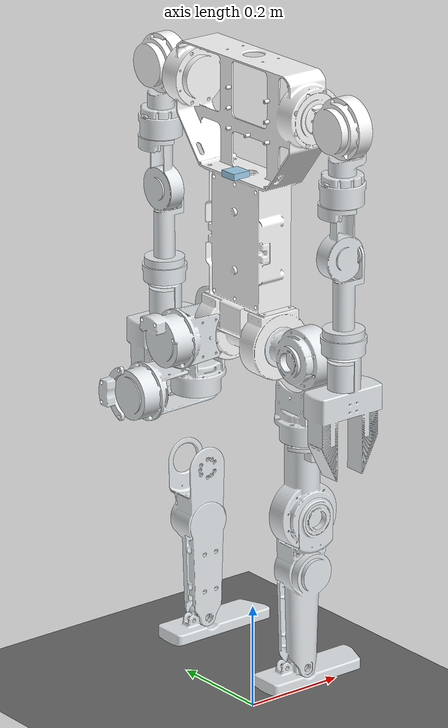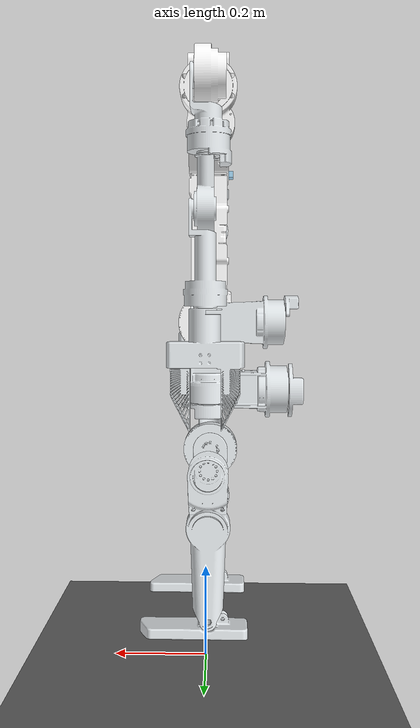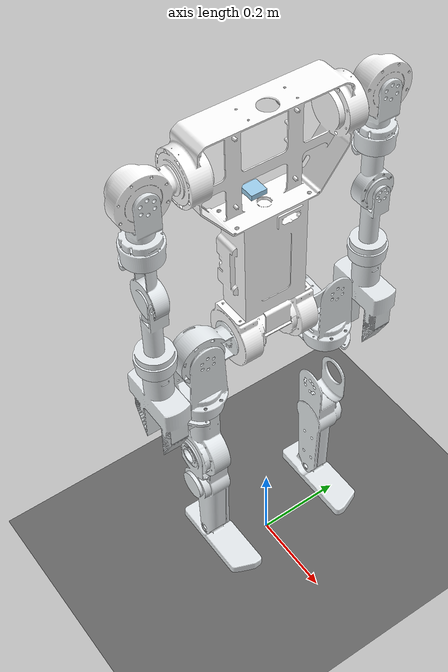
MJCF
<mujoco model="k-bot_naked">
  <option iterations="50" timestep="0.001" solver="PGS" gravity="0 0 -9.81" />

  <compiler angle="radian" meshdir="meshes" eulerseq="zyx" autolimits="true" />

  <default>
    <joint limited="true" damping="0.01" armature="0.01" frictionloss="0.01" />
    <geom condim="4" contype="1" conaffinity="15" friction="0.9 0.2 0.2" solref="0.001 2" />
    <motor ctrllimited="true" />
    <equality solref="0.001 2" />
    <default class="visualgeom">
      <geom material="visualgeom" condim="1" contype="0" conaffinity="0" />
    </default>
  </default>

  <asset>
    <mesh name="body1-part" file="body1-part.stl" />
    <mesh name="imu" file="imu.stl" />
    <mesh name="leg0_shell" file="leg0_shell.stl" />
    <mesh name="leg0_shell_2" file="leg0_shell_2.stl" />
    <mesh name="shoulder" file="shoulder.stl" />
    <mesh name="shoulder_2" file="shoulder_2.stl" />
    <mesh name="leg1_shell" file="leg1_shell.stl" />
    <mesh name="leg1_shell3" file="leg1_shell3.stl" />
    <mesh name="arm1_top" file="arm1_top.stl" />
    <mesh name="arm1_top_2" file="arm1_top_2.stl" />
    <mesh name="leg2_shell" file="leg2_shell.stl" />
    <mesh name="leg2_shell_2" file="leg2_shell_2.stl" />
    <mesh name="arm2_shell" file="arm2_shell.stl" />
    <mesh name="arm2_shell_2" file="arm2_shell_2.stl" />
    <mesh name="leg3_shell2" file="leg3_shell2.stl" />
    <mesh name="leg3_shell22" file="leg3_shell22.stl" />
    <mesh name="arm3_shell" file="arm3_shell.stl" />
    <mesh name="arm3_shell2" file="arm3_shell2.stl" />
    <mesh name="foot3" file="foot3.stl" />
    <mesh name="hand_shell" file="hand_shell.stl" />
    <mesh name="hand_shell_2" file="hand_shell_2.stl" />
    <mesh name="foot1" file="foot1.stl" />
    <texture name="texplane" type="2d" builtin="checker" rgb1=".0 .0 .0" rgb2=".8 .8 .8" width="100" height="100" />
    <material name="matplane" reflectance="0." texture="texplane" texrepeat="1 1" texuniform="true" />
    <material name="visualgeom" rgba="0.5 0.9 0.2 1" />
  </asset>

  <worldbody>
    <light directional="true" diffuse="0.4 0.4 0.4" specular="0.1 0.1 0.1" pos="0 0 5.0" dir="0 0 -1" castshadow="false" />
    <light directional="true" diffuse="0.6 0.6 0.6" specular="0.2 0.2 0.2" pos="0 0 4" dir="0 0 -1" />
    <geom name="ground" type="plane" pos="0 0 0" size="100 100 0.001" quat="1 0 0 0" material="matplane" condim="3" conaffinity="15" />
    <camera name="fixed" pos="0 -3.0 1.4006170219400256" xyaxes="1 0 0 0 0 1" />
    <camera name="track" mode="trackcom" pos="0 -3.0 1.4006170219400256" xyaxes="1 0 0 0 0 1" />
    <body name="root" pos="0 0 0.9006170219400256" quat="1 0 0 0">
      <freejoint name="root" />
      <site name="imu" size="0.01" pos="0 0 0" />
      <geom name="body1-part_collision" pos="0 0.001 -7.96327e-07" quat="0.707388 0.706825 0 0" type="mesh" rgba="1 1 1 1" mesh="body1-part" contype="1" conaffinity="0" density="0" group="1" class="visualgeom" />
      <geom type="mesh" rgba="1 1 1 1" mesh="body1-part" pos="0 0.001 -7.96327e-07" quat="0.707388 0.706825 0 0" />
      <geom name="imu_collision" pos="-0.0471263 0.000718484 0.140888" quat="9.23858e-12 2.32051e-08 0.0003982 1" type="mesh" rgba="0.615686 0.811765 0.929412 1" mesh="imu" contype="1" conaffinity="0" density="0" group="1" class="visualgeom" />
      <geom type="mesh" rgba="0.615686 0.811765 0.929412 1" mesh="imu" pos="-0.0471263 0.000718484 0.140888" quat="9.23858e-12 2.32051e-08 0.0003982 1" />
      <body name="leg0_shell" pos="-0.00712626 0.0891763 -0.163282" quat="0.707388 0.706825 0 0">
        <inertial pos="-0.00374632 -5.30704e-10 -0.0681251" quat="0.999982 0 -0.00597565 0" mass="1.32345" diaginertia="0.0018859 0.00142483 0.00129962" />
        <joint name="left_hip_pitch_04" pos="0 0 0" axis="0 0 1" range="-1.5708 1.5708" actuatorfrcrange="-120 120" />
        <geom name="leg0_shell_collision" type="mesh" rgba="0.898039 0.917647 0.929412 1" mesh="leg0_shell" contype="1" conaffinity="0" density="0" group="1" class="visualgeom" />
        <geom type="mesh" rgba="0.898039 0.917647 0.929412 1" mesh="leg0_shell" />
        <body name="leg1_shell" pos="0.0275 -1.54339e-09 -0.0695" quat="0.5 -0.5 -0.5 0.5">
          <inertial pos="-0.116471 0.00323117 0.025411" quat="0.162954 0.777613 0.0974626 0.599387" mass="1.36077" diaginertia="0.00293018 0.00283394 0.00156523" />
          <joint name="left_hip_roll_03" pos="0 0 0" axis="0 0 1" range="-3.18523 0.349066" actuatorfrcrange="-60 60" />
          <geom name="leg1_shell_collision" type="mesh" rgba="0.898039 0.917647 0.929412 1" mesh="leg1_shell" contype="1" conaffinity="0" density="0" group="1" class="visualgeom" />
          <geom type="mesh" rgba="0.898039 0.917647 0.929412 1" mesh="leg1_shell" />
          <body name="leg2_shell" pos="-0.1575 0.000119814 0.0275" quat="0.707107 0 0.707107 0">
            <inertial pos="4.08555e-07 0.000531684 -0.137308" quat="0.707084 -0.00547271 0.00548785 0.707088" mass="1.82092" diaginertia="0.00422586 0.00311812 0.00206385" />
            <joint name="left_hip_yaw_03" pos="0 0 0" axis="0 0 1" range="-1.5708 1.5708" actuatorfrcrange="-60 60" />
            <geom name="leg2_shell_collision" type="mesh" rgba="0.898039 0.917647 0.929412 1" mesh="leg2_shell" contype="1" conaffinity="0" density="0" group="1" class="visualgeom" />
            <geom type="mesh" rgba="0.898039 0.917647 0.929412 1" mesh="leg2_shell" />
            <body name="leg3_shell2" pos="0 0.0352 -0.1425" quat="0.707107 0.707107 0 0">
              <inertial pos="0.00103299 -0.12548 0.0366711" quat="0.691727 0.665165 0.198925 -0.19874" mass="1.17968" diaginertia="0.00753953 0.00750258 0.00111461" />
              <joint name="left_knee_04" pos="0 0 0" axis="0 0 1" range="-2.0944 0" actuatorfrcrange="-120 120" />
              <geom name="leg3_shell2_collision" type="mesh" rgba="0.898039 0.917647 0.929412 1" mesh="leg3_shell2" contype="1" conaffinity="0" density="0" group="1" class="visualgeom" />
              <geom type="mesh" rgba="0.898039 0.917647 0.929412 1" mesh="leg3_shell2" />
              <body name="foot1" pos="0 -0.3 0.0692" quat="1 4.64102e-08 0 0">
                <inertial pos="0.0213499 -0.019419 -0.0192762" quat="0.505229 0.504986 0.485131 0.504362" mass="0.582091" diaginertia="0.00218912 0.00202432 0.000282398" />
                <joint name="left_ankle_02" pos="0 0 0" axis="0 0 1" range="-0.698132 0.698132" actuatorfrcrange="-17 17" />
                <geom name="foot1_collision" type="mesh" rgba="0.898039 0.917647 0.929412 1" mesh="foot1" contype="1" conaffinity="0" density="0" group="1" class="visualgeom" />
                <geom type="mesh" rgba="0.898039 0.917647 0.929412 1" mesh="foot1" />
              </body>
            </body>
          </body>
        </body>
      </body>
      <body name="leg0_shell_2" pos="-0.00712626 -0.0887237 -0.163141" quat="0.706825 -0.707388 0 0">
        <inertial pos="-0.00374632 -5.30704e-10 -0.0676251" quat="0.999982 0 -0.00597565 0" mass="1.32345" diaginertia="0.0018859 0.00142483 0.00129962" />
        <joint name="right_hip_pitch_04" pos="0 0 0" axis="0 0 1" range="-1.5708 1.5708" actuatorfrcrange="-120 120" />
        <geom name="leg0_shell_collision_2" type="mesh" rgba="0.898039 0.917647 0.929412 1" mesh="leg0_shell_2" contype="1" conaffinity="0" density="0" group="1" class="visualgeom" />
        <geom type="mesh" rgba="0.898039 0.917647 0.929412 1" mesh="leg0_shell_2" />
        <body name="leg1_shell3" pos="0.0275 -1.54339e-09 -0.069" quat="0.5 0.5 -0.5 -0.5">
          <inertial pos="-0.116295 -0.00323118 0.025411" quat="-0.155155 0.779695 -0.0910895 0.599754" mass="1.36077" diaginertia="0.00290553 0.00280871 0.00156592" />
          <joint name="right_hip_roll_03" pos="0 0 0" axis="0 0 1" range="-0.349066 3.18523" actuatorfrcrange="-60 60" />
          <geom name="leg1_shell3_collision" type="mesh" rgba="0.898039 0.917647 0.929412 1" mesh="leg1_shell3" contype="1" conaffinity="0" density="0" group="1" class="visualgeom" />
          <geom type="mesh" rgba="0.898039 0.917647 0.929412 1" mesh="leg1_shell3" />
          <body name="leg2_shell_2" pos="-0.1575 -0.000119814 0.0275" quat="0 -0.707107 0 -0.707107">
            <inertial pos="4.08555e-07 0.000531684 -0.137308" quat="0.707084 -0.00547271 0.00548785 0.707088" mass="1.82092" diaginertia="0.00422586 0.00311812 0.00206385" />
            <joint name="right_hip_yaw_03" pos="0 0 0" axis="0 0 1" range="-1.5708 1.5708" actuatorfrcrange="-60 60" />
            <geom name="leg2_shell_collision_2" type="mesh" rgba="0.898039 0.917647 0.929412 1" mesh="leg2_shell_2" contype="1" conaffinity="0" density="0" group="1" class="visualgeom" />
            <geom type="mesh" rgba="0.898039 0.917647 0.929412 1" mesh="leg2_shell_2" />
            <body name="leg3_shell22" pos="0 0.0352 -0.1425" quat="0.707107 0.707107 0 0">
              <inertial pos="-0.00103303 -0.12548 0.0366712" quat="0.691727 0.665164 -0.198928 0.198742" mass="1.17968" diaginertia="0.00753955 0.0075026 0.00111462" />
              <joint name="right_knee_04" pos="0 0 0" axis="0 0 1" range="0 2.0944" actuatorfrcrange="-120 120" />
              <geom name="leg3_shell22_collision" type="mesh" rgba="0.898039 0.917647 0.929412 1" mesh="leg3_shell22" contype="1" conaffinity="0" density="0" group="1" class="visualgeom" />
              <geom type="mesh" rgba="0.898039 0.917647 0.929412 1" mesh="leg3_shell22" />
              <body name="foot3" pos="1.07672e-08 -0.3 0.0282" quat="0 -2.32051e-08 1 -2.32051e-08">
                <inertial pos="0.0213499 -0.019419 -0.0237238" quat="0.504986 0.505229 0.504361 0.485132" mass="0.582091" diaginertia="0.00218912 0.00202432 0.000282398" />
                <joint name="right_ankle_02" pos="0 0 0" axis="0 0 1" range="-0.698132 0.698132" actuatorfrcrange="-17 17" />
                <geom name="foot3_collision" type="mesh" rgba="0.898039 0.917647 0.929412 1" mesh="foot3" contype="1" conaffinity="0" density="0" group="1" class="visualgeom" />
                <geom type="mesh" rgba="0.898039 0.917647 0.929412 1" mesh="foot3" />
              </body>
            </body>
          </body>
        </body>
      </body>
      <body name="shoulder" pos="-0.00712625 0.189335 0.286738" quat="0.707388 0.706825 0 0">
        <inertial pos="-0.00214329 5.4983e-05 -0.0664624" quat="0.999995 5.9818e-05 0.00315233 1.81742e-05" mass="1.10769" diaginertia="0.00148214 0.00104085 0.000985989" />
        <joint name="left_shoulder_pitch_03" pos="0 0 0" axis="0 0 1" range="0 3.14159" actuatorfrcrange="-60 60" />
        <geom name="shoulder_collision" type="mesh" rgba="1 1 1 1" mesh="shoulder" contype="1" conaffinity="0" density="0" group="1" class="visualgeom" />
        <geom type="mesh" rgba="1 1 1 1" mesh="shoulder" />
        <body name="arm1_top" pos="0.021512 5.62784e-05 -0.0675" quat="0.5 0.5 0.5 0.5">
          <inertial pos="-0.104917 -2.22448e-06 -0.0227023" quat="-0.000173104 0.567488 -0.000118086 0.823381" mass="0.64852" diaginertia="0.00132407 0.00129493 0.000441655" />
          <joint name="left_shoulder_roll_03" pos="0 0 0" axis="0 0 1" range="-0.479966 3.63028" actuatorfrcrange="-60 60" />
          <geom name="arm1_top_collision" type="mesh" rgba="0.898039 0.917647 0.929412 1" mesh="arm1_top" contype="1" conaffinity="0" density="0" group="1" class="visualgeom" />
          <geom type="mesh" rgba="0.898039 0.917647 0.929412 1" mesh="arm1_top" />
          <body name="arm2_shell" pos="-0.1405 -1.50833e-09 -0.0235" quat="0.707107 -1.64085e-08 0.707107 1.64085e-08">
            <inertial pos="-0.00633503 0 -0.0904211" quat="0.999974 0 0.00716284 0" mass="0.511016" diaginertia="0.000678337 0.000535398 0.000254797" />
            <joint name="left_shoulder_yaw_02" pos="0 0 0" axis="0 0 1" range="-1.5708 1.5708" actuatorfrcrange="-17 17" />
            <geom name="arm2_shell_collision" type="mesh" rgba="0.898039 0.917647 0.929412 1" mesh="arm2_shell" contype="1" conaffinity="0" density="0" group="1" class="visualgeom" />
            <geom type="mesh" rgba="0.898039 0.917647 0.929412 1" mesh="arm2_shell" />
            <body name="arm3_shell" pos="-0.027 -4.64102e-11 -0.098" quat="1.64085e-08 -0.707107 -1.64085e-08 -0.707107">
              <inertial pos="-0.140087 -3.71527e-10 0.0194225" quat="0 0.759525 0 0.650479" mass="0.578875" diaginertia="0.00136107 0.00136078 0.000405662" />
              <joint name="left_elbow_02" pos="0 0 0" axis="0 0 1" range="-2.53073 0" actuatorfrcrange="-17 17" />
              <geom name="arm3_shell_collision" type="mesh" rgba="0.898039 0.917647 0.929412 1" mesh="arm3_shell" contype="1" conaffinity="0" density="0" group="1" class="visualgeom" />
              <geom type="mesh" rgba="0.898039 0.917647 0.929412 1" mesh="arm3_shell" />
              <body name="hand_shell" pos="-0.1825 -1.50833e-09 0.0215" quat="0.707107 -1.64085e-08 0.707107 1.64085e-08">
                <inertial pos="0.000708717 0.00012971 -0.0746297" quat="0.70677 0.0116364 0.0100591 0.707276" mass="0.793352" diaginertia="0.00287111 0.002036 0.00127892" />
                <joint name="left_wrist_02" pos="0 0 0" axis="0 0 1" range="0 6.28319" actuatorfrcrange="-17 17" />
                <geom name="hand_shell_collision" type="mesh" rgba="0.898039 0.917647 0.929412 1" mesh="hand_shell" contype="1" conaffinity="0" density="0" group="1" class="visualgeom" />
                <geom type="mesh" rgba="0.898039 0.917647 0.929412 1" mesh="hand_shell" />
              </body>
            </body>
          </body>
        </body>
      </body>
      <body name="shoulder_2" pos="-0.00712625 -0.187665 0.287038" quat="-0.706825 0.707388 -3.283e-08 -3.28039e-08">
        <inertial pos="-0.00214329 -5.49874e-05 -0.0664625" quat="0.999995 -5.96166e-05 0.00315233 -1.81134e-05" mass="1.10769" diaginertia="0.00148214 0.00104085 0.000985989" />
        <joint name="right_shoulder_pitch_03" pos="0 0 0" axis="0 0 1" range="-3.14159 0" actuatorfrcrange="-60 60" />
        <geom name="shoulder_collision_2" type="mesh" rgba="1 1 1 1" mesh="shoulder_2" contype="1" conaffinity="0" density="0" group="1" class="visualgeom" />
        <geom type="mesh" rgba="1 1 1 1" mesh="shoulder_2" />
        <body name="arm1_top_2" pos="0.023512 -5.62784e-05 -0.0675" quat="0.5 0.5 -0.5 -0.5">
          <inertial pos="-0.104917 -2.15785e-06 0.0217023" quat="0.000114638 0.823382 0.000170604 0.567488" mass="0.648519" diaginertia="0.00132407 0.00129493 0.000441654" />
          <joint name="right_shoulder_roll_03" pos="0 0 0" axis="0 0 1" range="-0.479966 3.63028" actuatorfrcrange="-60 60" />
          <geom name="arm1_top_2_collision" type="mesh" rgba="0.898039 0.917647 0.929412 1" mesh="arm1_top_2" contype="1" conaffinity="0" density="0" group="1" class="visualgeom" />
          <geom type="mesh" rgba="0.898039 0.917647 0.929412 1" mesh="arm1_top_2" />
          <body name="arm2_shell_2" pos="-0.1385 -4.64102e-11 0.0225" quat="1.64085e-08 -0.707107 1.64085e-08 0.707107">
            <inertial pos="0.00633503 0 0.0899211" quat="0.999974 0 0.00716283 0" mass="0.511016" diaginertia="0.000678337 0.000535398 0.000254797" />
            <joint name="right_shoulder_yaw_02" pos="0 0 0" axis="0 0 1" range="-1.5708 1.5708" actuatorfrcrange="-17 17" />
            <geom name="arm2_shell_collision_2" type="mesh" rgba="0.898039 0.917647 0.929412 1" mesh="arm2_shell_2" contype="1" conaffinity="0" density="0" group="1" class="visualgeom" />
            <geom type="mesh" rgba="0.898039 0.917647 0.929412 1" mesh="arm2_shell_2" />
            <body name="arm3_shell2" pos="0.027 -4.64102e-11 0.0975" quat="1.64085e-08 -0.707107 1.64085e-08 0.707107">
              <inertial pos="-0.140087 -3.71527e-10 0.0194225" quat="0 0.759525 0 0.650479" mass="0.578875" diaginertia="0.00136107 0.00136078 0.000405662" />
              <joint name="right_elbow_02" pos="0 0 0" axis="0 0 1" range="0 2.53073" actuatorfrcrange="-17 17" />
              <geom name="arm3_shell2_collision" type="mesh" rgba="0.898039 0.917647 0.929412 1" mesh="arm3_shell2" contype="1" conaffinity="0" density="0" group="1" class="visualgeom" />
              <geom type="mesh" rgba="0.898039 0.917647 0.929412 1" mesh="arm3_shell2" />
              <body name="hand_shell_2" pos="-0.1825 -1.50833e-09 0.0215" quat="0.707107 -1.64085e-08 0.707107 1.64085e-08">
                <inertial pos="0.000708717 0.00012971 -0.0746297" quat="0.70677 0.0116364 0.0100591 0.707276" mass="0.793352" diaginertia="0.00287111 0.002036 0.00127892" />
                <joint name="right_wrist_02" pos="0 0 0" axis="0 0 1" range="0 6.28319" actuatorfrcrange="-17 17" />
                <geom name="hand_shell_collision_2" type="mesh" rgba="0.898039 0.917647 0.929412 1" mesh="hand_shell_2" contype="1" conaffinity="0" density="0" group="1" class="visualgeom" />
                <geom type="mesh" rgba="0.898039 0.917647 0.929412 1" mesh="hand_shell_2" />
              </body>
            </body>
          </body>
        </body>
      </body>
    </body>
  </worldbody>

  <actuator>
    <motor name="left_hip_pitch_04" joint="left_hip_pitch_04" ctrllimited="true" ctrlrange="-120 120" gear="1" />
    <motor name="left_hip_roll_03" joint="left_hip_roll_03" ctrllimited="true" ctrlrange="-60 60" gear="1" />
    <motor name="left_hip_yaw_03" joint="left_hip_yaw_03" ctrllimited="true" ctrlrange="-60 60" gear="1" />
    <motor name="left_knee_04" joint="left_knee_04" ctrllimited="true" ctrlrange="-120 120" gear="1" />
    <motor name="left_ankle_02" joint="left_ankle_02" ctrllimited="true" ctrlrange="-17 17" gear="1" />
    <motor name="right_hip_pitch_04" joint="right_hip_pitch_04" ctrllimited="true" ctrlrange="-120 120" gear="1" />
    <motor name="right_hip_roll_03" joint="right_hip_roll_03" ctrllimited="true" ctrlrange="-60 60" gear="1" />
    <motor name="right_hip_yaw_03" joint="right_hip_yaw_03" ctrllimited="true" ctrlrange="-60 60" gear="1" />
    <motor name="right_knee_04" joint="right_knee_04" ctrllimited="true" ctrlrange="-120 120" gear="1" />
    <motor name="right_ankle_02" joint="right_ankle_02" ctrllimited="true" ctrlrange="-17 17" gear="1" />
    <motor name="left_shoulder_pitch_03" joint="left_shoulder_pitch_03" ctrllimited="true" ctrlrange="-60 60" gear="1" />
    <motor name="left_shoulder_roll_03" joint="left_shoulder_roll_03" ctrllimited="true" ctrlrange="-60 60" gear="1" />
    <motor name="left_shoulder_yaw_02" joint="left_shoulder_yaw_02" ctrllimited="true" ctrlrange="-17 17" gear="1" />
    <motor name="left_elbow_02" joint="left_elbow_02" ctrllimited="true" ctrlrange="-17 17" gear="1" />
    <motor name="left_wrist_02" joint="left_wrist_02" ctrllimited="true" ctrlrange="-17 17" gear="1" />
    <motor name="right_shoulder_pitch_03" joint="right_shoulder_pitch_03" ctrllimited="true" ctrlrange="-60 60" gear="1" />
    <motor name="right_shoulder_roll_03" joint="right_shoulder_roll_03" ctrllimited="true" ctrlrange="-60 60" gear="1" />
    <motor name="right_shoulder_yaw_02" joint="right_shoulder_yaw_02" ctrllimited="true" ctrlrange="-17 17" gear="1" />
    <motor name="right_elbow_02" joint="right_elbow_02" ctrllimited="true" ctrlrange="-17 17" gear="1" />
    <motor name="right_wrist_02" joint="right_wrist_02" ctrllimited="true" ctrlrange="-17 17" gear="1" />
  </actuator>

  <sensor>
    <actuatorpos name="left_hip_pitch_04_p" actuator="left_hip_pitch_04" />
    <actuatorvel name="left_hip_pitch_04_v" actuator="left_hip_pitch_04" />
    <actuatorfrc name="left_hip_pitch_04_f" actuator="left_hip_pitch_04" noise="0.001" />
    <actuatorpos name="left_hip_roll_03_p" actuator="left_hip_roll_03" />
    <actuatorvel name="left_hip_roll_03_v" actuator="left_hip_roll_03" />
    <actuatorfrc name="left_hip_roll_03_f" actuator="left_hip_roll_03" noise="0.001" />
    <actuatorpos name="left_hip_yaw_03_p" actuator="left_hip_yaw_03" />
    <actuatorvel name="left_hip_yaw_03_v" actuator="left_hip_yaw_03" />
    <actuatorfrc name="left_hip_yaw_03_f" actuator="left_hip_yaw_03" noise="0.001" />
    <actuatorpos name="left_knee_04_p" actuator="left_knee_04" />
    <actuatorvel name="left_knee_04_v" actuator="left_knee_04" />
    <actuatorfrc name="left_knee_04_f" actuator="left_knee_04" noise="0.001" />
    <actuatorpos name="left_ankle_02_p" actuator="left_ankle_02" />
    <actuatorvel name="left_ankle_02_v" actuator="left_ankle_02" />
    <actuatorfrc name="left_ankle_02_f" actuator="left_ankle_02" noise="0.001" />
    <actuatorpos name="right_hip_pitch_04_p" actuator="right_hip_pitch_04" />
    <actuatorvel name="right_hip_pitch_04_v" actuator="right_hip_pitch_04" />
    <actuatorfrc name="right_hip_pitch_04_f" actuator="right_hip_pitch_04" noise="0.001" />
    <actuatorpos name="right_hip_roll_03_p" actuator="right_hip_roll_03" />
    <actuatorvel name="right_hip_roll_03_v" actuator="right_hip_roll_03" />
    <actuatorfrc name="right_hip_roll_03_f" actuator="right_hip_roll_03" noise="0.001" />
    <actuatorpos name="right_hip_yaw_03_p" actuator="right_hip_yaw_03" />
    <actuatorvel name="right_hip_yaw_03_v" actuator="right_hip_yaw_03" />
    <actuatorfrc name="right_hip_yaw_03_f" actuator="right_hip_yaw_03" noise="0.001" />
    <actuatorpos name="right_knee_04_p" actuator="right_knee_04" />
    <actuatorvel name="right_knee_04_v" actuator="right_knee_04" />
    <actuatorfrc name="right_knee_04_f" actuator="right_knee_04" noise="0.001" />
    <actuatorpos name="right_ankle_02_p" actuator="right_ankle_02" />
    <actuatorvel name="right_ankle_02_v" actuator="right_ankle_02" />
    <actuatorfrc name="right_ankle_02_f" actuator="right_ankle_02" noise="0.001" />
    <actuatorpos name="left_shoulder_pitch_03_p" actuator="left_shoulder_pitch_03" />
    <actuatorvel name="left_shoulder_pitch_03_v" actuator="left_shoulder_pitch_03" />
    <actuatorfrc name="left_shoulder_pitch_03_f" actuator="left_shoulder_pitch_03" noise="0.001" />
    <actuatorpos name="left_shoulder_roll_03_p" actuator="left_shoulder_roll_03" />
    <actuatorvel name="left_shoulder_roll_03_v" actuator="left_shoulder_roll_03" />
    <actuatorfrc name="left_shoulder_roll_03_f" actuator="left_shoulder_roll_03" noise="0.001" />
    <actuatorpos name="left_shoulder_yaw_02_p" actuator="left_shoulder_yaw_02" />
    <actuatorvel name="left_shoulder_yaw_02_v" actuator="left_shoulder_yaw_02" />
    <actuatorfrc name="left_shoulder_yaw_02_f" actuator="left_shoulder_yaw_02" noise="0.001" />
    <actuatorpos name="left_elbow_02_p" actuator="left_elbow_02" />
    <actuatorvel name="left_elbow_02_v" actuator="left_elbow_02" />
    <actuatorfrc name="left_elbow_02_f" actuator="left_elbow_02" noise="0.001" />
    <actuatorpos name="left_wrist_02_p" actuator="left_wrist_02" />
    <actuatorvel name="left_wrist_02_v" actuator="left_wrist_02" />
    <actuatorfrc name="left_wrist_02_f" actuator="left_wrist_02" noise="0.001" />
    <actuatorpos name="right_shoulder_pitch_03_p" actuator="right_shoulder_pitch_03" />
    <actuatorvel name="right_shoulder_pitch_03_v" actuator="right_shoulder_pitch_03" />
    <actuatorfrc name="right_shoulder_pitch_03_f" actuator="right_shoulder_pitch_03" noise="0.001" />
    <actuatorpos name="right_shoulder_roll_03_p" actuator="right_shoulder_roll_03" />
    <actuatorvel name="right_shoulder_roll_03_v" actuator="right_shoulder_roll_03" />
    <actuatorfrc name="right_shoulder_roll_03_f" actuator="right_shoulder_roll_03" noise="0.001" />
    <actuatorpos name="right_shoulder_yaw_02_p" actuator="right_shoulder_yaw_02" />
    <actuatorvel name="right_shoulder_yaw_02_v" actuator="right_shoulder_yaw_02" />
    <actuatorfrc name="right_shoulder_yaw_02_f" actuator="right_shoulder_yaw_02" noise="0.001" />
    <actuatorpos name="right_elbow_02_p" actuator="right_elbow_02" />
    <actuatorvel name="right_elbow_02_v" actuator="right_elbow_02" />
    <actuatorfrc name="right_elbow_02_f" actuator="right_elbow_02" noise="0.001" />
    <actuatorpos name="right_wrist_02_p" actuator="right_wrist_02" />
    <actuatorvel name="right_wrist_02_v" actuator="right_wrist_02" />
    <actuatorfrc name="right_wrist_02_f" actuator="right_wrist_02" noise="0.001" />
    <framequat name="orientation" objtype="site" noise="0.001" objname="imu" />
    <gyro name="angular-velocity" site="imu" noise="0.005" cutoff="34.9" />
    <accelerometer name="linear-acceleration" site="imu" noise="0.005" cutoff="157"/>
  </sensor>
</mujoco>
